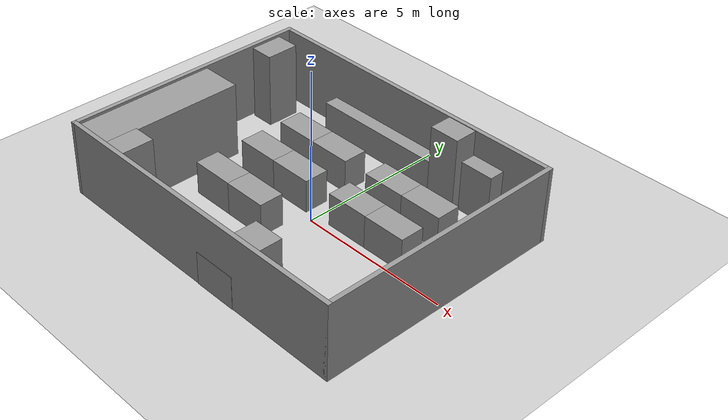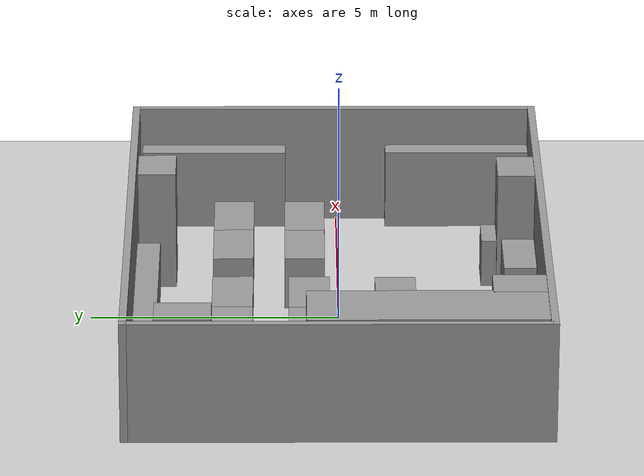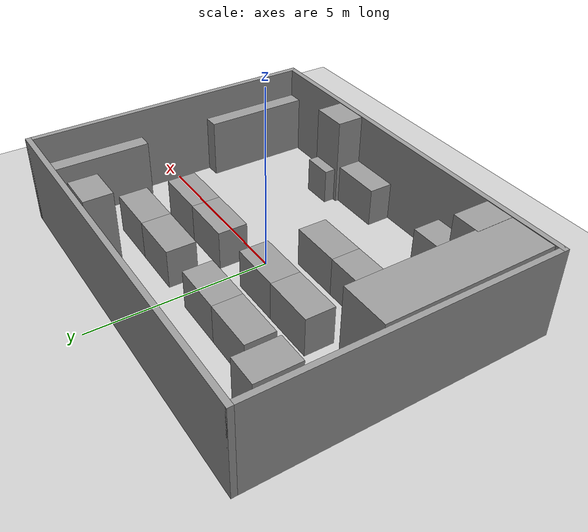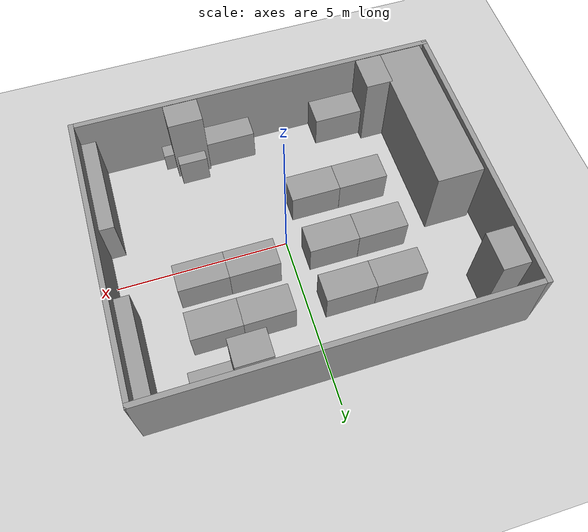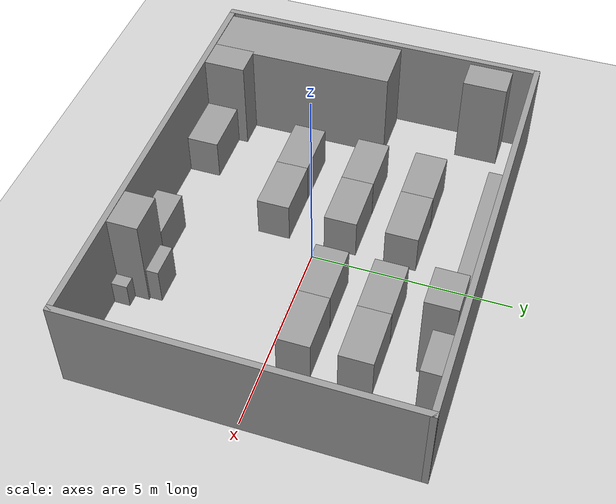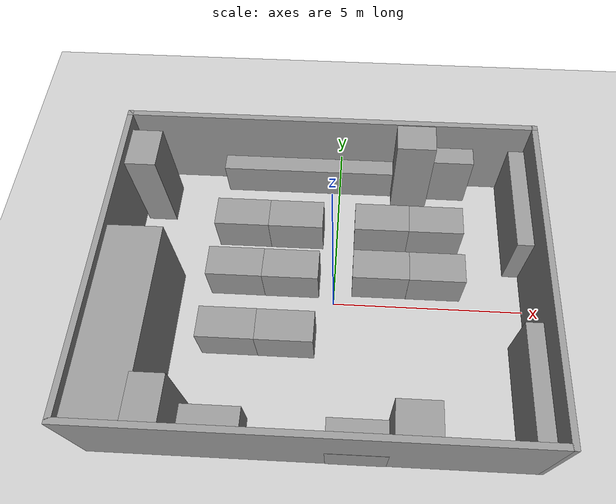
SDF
<sdf version="1.7">
 <world name="skripsi_world">
  <light name="sun" type="directional">
   <pose>0 0 10 0 -0 0</pose>
   <diffuse>0.8 0.8 0.8 1</diffuse>
   <specular>0.2 0.2 0.2 1</specular>
   <attenuation>
    <range>1000</range>
    <constant>0.9</constant>
    <linear>0.01</linear>
    <quadratic>0.001</quadratic>
   </attenuation>
   <direction>-0.5 0.1 -0.9</direction>
   <spot><inner_angle>0</inner_angle><outer_angle>0</outer_angle><falloff>0</falloff></spot>
  </light>
  <model name="ground_plane">
   <static>1</static>
   <link name="link">
    <collision name="collision">
     <geometry><plane><normal>0 0 1</normal><size>100 100</size></plane></geometry>
     <surface>
      <contact><collide_bitmask>65535</collide_bitmask></contact>
      <friction><ode><mu>100</mu><mu2>50</mu2></ode></friction>
     </surface>
    </collision>
    <visual name="visual">
     <cast_shadows>0</cast_shadows>
     <geometry><plane><normal>0 0 1</normal><size>100 100</size></plane></geometry>
     <material>
      <script><uri>file://media/materials/scripts/gazebo.material</uri><name>Gazebo/Grey</name></script>
     </material>
    </visual>
   </link>
  </model>
  <gravity>0 0 -9.8</gravity>
  <magnetic_field>6e-06 2.3e-05 -4.2e-05</magnetic_field>
  <atmosphere type="adiabatic"/>
  <physics type="ode">
   <max_step_size>0.001</max_step_size>
   <real_time_factor>1</real_time_factor>
   <real_time_update_rate>1000</real_time_update_rate>
  </physics>
  <scene><ambient>0.4 0.4 0.4 1</ambient><background>0.7 0.7 0.7 1</background><shadows>1</shadows></scene>
  <spherical_coordinates>
   <surface_model>EARTH_WGS84</surface_model>
   <latitude_deg>0</latitude_deg>
   <longitude_deg>0</longitude_deg>
   <elevation>0</elevation>
   <heading_deg>0</heading_deg>
  </spherical_coordinates>
  <model name="map2d">
   <pose>-0.27298 0.05045 0 0 -0 0</pose>
   <link name="Wall_10">
    <collision name="Wall_10_Collision">
     <geometry><box><size>10.8 0.15 2.5</size></box></geometry>
     <pose>0 0 1.25 0 -0 0</pose>
    </collision>
    <visual name="Wall_10_Visual">
     <pose>0 0 1.25 0 -0 0</pose>
     <geometry><box><size>10.8 0.15 2.5</size></box></geometry>
     <material>
      <script><uri>file://media/materials/scripts/gazebo.material</uri><name>Gazebo/Grey</name></script>
      <ambient>1 1 1 1</ambient>
     </material>
     <meta><layer>0</layer></meta>
    </visual>
    <pose>0 4.125 0 0 -0 0</pose>
   </link>
   <link name="Wall_12">
    <collision name="Wall_12_Collision">
     <geometry><box><size>8.4 0.15 2.5</size></box></geometry>
     <pose>0 0 1.25 0 -0 0</pose>
    </collision>
    <visual name="Wall_12_Visual">
     <pose>0 0 1.25 0 -0 0</pose>
     <geometry><box><size>8.4 0.15 2.5</size></box></geometry>
     <material>
      <script><uri>file://media/materials/scripts/gazebo.material</uri><name>Gazebo/Grey</name></script>
      <ambient>1 1 1 1</ambient>
     </material>
     <meta><layer>0</layer></meta>
    </visual>
    <pose>5.325 0 0 0 -0 1.5708</pose>
   </link>
   <link name="Wall_6">
    <collision name="Wall_6_Collision">
     <geometry><box><size>8.4 0.15 2.5</size></box></geometry>
     <pose>0 0 1.25 0 -0 0</pose>
    </collision>
    <visual name="Wall_6_Visual">
     <pose>0 0 1.25 0 -0 0</pose>
     <geometry><box><size>8.4 0.15 2.5</size></box></geometry>
     <material>
      <script><uri>file://media/materials/scripts/gazebo.material</uri><name>Gazebo/Grey</name></script>
      <ambient>1 1 1 1</ambient>
     </material>
     <meta><layer>0</layer></meta>
    </visual>
    <pose>-5.325 0 0 0 -0 -1.5708</pose>
   </link>
   <link name="Wall_8">
    <collision name="Wall_8_Collision">
     <geometry><box><size>10.8 0.15 2.5</size></box></geometry>
     <pose>0 0 1.25 0 -0 0</pose>
    </collision>
    <visual name="Wall_8_Visual">
     <pose>0 0 1.25 0 -0 0</pose>
     <geometry><box><size>10.8 0.15 2.5</size></box></geometry>
     <material>
      <script><uri>file://media/materials/scripts/gazebo.material</uri><name>Gazebo/Grey</name></script>
      <ambient>1 1 1 1</ambient>
     </material>
     <meta><layer>0</layer></meta>
    </visual>
    <pose>0 -4.125 0 0 -0 0</pose>
   </link>
   <static>1</static>
  </model>
  <model name="unit_box_3_clone_clone_clone">
   <link name="link_clone">
    <inertial>
     <mass>1.2995</mass>
     <inertia>
      <ixx>0.203918</ixx>
      <ixy>0</ixy>
      <ixz>0</ixz>
      <iyy>0.357769</iyy>
      <iyz>0</iyz>
      <izz>0.297836</izz>
     </inertia>
    </inertial>
    <pose>-1.55435 -0.172825 0.042102 0 -0 0</pose>
    <visual name="visual">
     <geometry><box><size>1.44413 0.815352 1.10374</size></box></geometry>
     <material>
      <script><name>Gazebo/Grey</name><uri>file://media/materials/scripts/gazebo.material</uri></script>
      <shader type="pixel"><normal_map>__default__</normal_map></shader>
     </material>
    </visual>
    <collision name="collision">
     <geometry><box><size>1.44413 0.815352 1.10374</size></box></geometry>
     <surface>
      <friction>
       <ode><mu>1</mu><mu2>1</mu2><fdir1>0 0 0</fdir1><slip1>0</slip1><slip2>0</slip2></ode>
       <torsional>
        <coefficient>1</coefficient>
        <patch_radius>0</patch_radius>
        <surface_radius>0</surface_radius>
        <use_patch_radius>1</use_patch_radius>
        <ode><slip>0</slip></ode>
       </torsional>
      </friction>
      <bounce><restitution_coefficient>0</restitution_coefficient><threshold>1e+06</threshold></bounce>
      <contact>
       <collide_without_contact>0</collide_without_contact>
       <collide_without_contact_bitmask>1</collide_without_contact_bitmask>
       <collide_bitmask>1</collide_bitmask>
       <ode>
        <soft_cfm>0</soft_cfm>
        <soft_erp>0.2</soft_erp>
        <kp>1e+13</kp>
        <kd>1</kd>
        <max_vel>0.01</max_vel>
        <min_depth>0</min_depth>
       </ode>
       <bullet>
        <split_impulse>1</split_impulse>
        <split_impulse_penetration_threshold>-0.01</split_impulse_penetration_threshold>
        <soft_cfm>0</soft_cfm>
        <soft_erp>0.2</soft_erp>
        <kp>1e+13</kp>
        <kd>1</kd>
       </bullet>
      </contact>
     </surface>
    </collision>
   </link>
   <static>1</static>
   <pose>-1.10518 -3.42756 0.5 0 -0 0</pose>
  </model>
  <model name="unit_box_0_clone_0_clone">
   <link name="link">
    <inertial>
     <mass>2.16615</mass>
     <inertia><ixx>1.34511</ixx><ixy>0</ixy><ixz>0</ixz><iyy>1.23576</iyy><iyz>0</iyz><izz>0.331862</izz></inertia>
    </inertial>
    <pose>-0.589602 1.20946 0.766518 0 -0 0</pose>
    <visual name="visual">
     <geometry><box><size>0.785064 1.10549 2.4959</size></box></geometry>
     <material>
      <script><name>Gazebo/Grey</name><uri>file://media/materials/scripts/gazebo.material</uri></script>
      <shader type="pixel"/>
     </material>
    </visual>
    <collision name="collision">
     <geometry><box><size>0.785064 1.10549 2.4959</size></box></geometry>
     <surface>
      <friction>
       <ode><mu>1</mu><mu2>1</mu2><fdir1>0 0 0</fdir1><slip1>0</slip1><slip2>0</slip2></ode>
       <torsional>
        <coefficient>1</coefficient>
        <patch_radius>0</patch_radius>
        <surface_radius>0</surface_radius>
        <use_patch_radius>1</use_patch_radius>
        <ode><slip>0</slip></ode>
       </torsional>
      </friction>
      <bounce><restitution_coefficient>0</restitution_coefficient><threshold>1e+06</threshold></bounce>
      <contact>
       <collide_without_contact>0</collide_without_contact>
       <collide_without_contact_bitmask>1</collide_without_contact_bitmask>
       <collide_bitmask>1</collide_bitmask>
       <ode>
        <soft_cfm>0</soft_cfm>
        <soft_erp>0.2</soft_erp>
        <kp>1e+13</kp>
        <kd>1</kd>
        <max_vel>0.01</max_vel>
        <min_depth>0</min_depth>
       </ode>
       <bullet>
        <split_impulse>1</split_impulse>
        <split_impulse_penetration_threshold>-0.01</split_impulse_penetration_threshold>
        <soft_cfm>0</soft_cfm>
        <soft_erp>0.2</soft_erp>
        <kp>1e+13</kp>
        <kd>1</kd>
       </bullet>
      </contact>
     </surface>
    </collision>
   </link>
   <static>1</static>
   <pose>-3.17626 -4.71199 0.471412 0 -0 0</pose>
  </model>
  <model name="unit_box_1_clone">
   <link name="link">
    <inertial>
     <mass>16.4637</mass>
     <inertia><ixx>11.7063</ixx><ixy>0</ixy><ixz>0</ixz><iyy>39.7887</iyy><iyz>0</iyz><izz>33.0581</izz></inertia>
    </inertial>
    <pose>-4.15836 -0.551889 0.778504 0 -0 -1.56625</pose>
    <visual name="visual">
     <geometry><box><size>4.72037 1.34659 2.59212</size></box></geometry>
     <material>
      <script><name>Gazebo/Grey</name><uri>file://media/materials/scripts/gazebo.material</uri></script>
      <shader type="pixel"><normal_map>__default__</normal_map></shader>
     </material>
    </visual>
    <collision name="collision">
     <geometry><box><size>4.72037 1.34659 2.59212</size></box></geometry>
     <surface>
      <friction>
       <ode><mu>1</mu><mu2>1</mu2><fdir1>0 0 0</fdir1><slip1>0</slip1><slip2>0</slip2></ode>
       <torsional>
        <coefficient>1</coefficient>
        <patch_radius>0</patch_radius>
        <surface_radius>0</surface_radius>
        <use_patch_radius>1</use_patch_radius>
        <ode><slip>0</slip></ode>
       </torsional>
      </friction>
      <bounce><restitution_coefficient>0</restitution_coefficient><threshold>1e+06</threshold></bounce>
      <contact>
       <collide_without_contact>0</collide_without_contact>
       <collide_without_contact_bitmask>1</collide_without_contact_bitmask>
       <collide_bitmask>1</collide_bitmask>
       <ode>
        <soft_cfm>0</soft_cfm>
        <soft_erp>0.2</soft_erp>
        <kp>1e+13</kp>
        <kd>1</kd>
        <max_vel>0.01</max_vel>
        <min_depth>0</min_depth>
       </ode>
       <bullet>
        <split_impulse>1</split_impulse>
        <split_impulse_penetration_threshold>-0.01</split_impulse_penetration_threshold>
        <soft_cfm>0</soft_cfm>
        <soft_erp>0.2</soft_erp>
        <kp>1e+13</kp>
        <kd>1</kd>
       </bullet>
      </contact>
     </surface>
    </collision>
   </link>
   <static>1</static>
   <pose>-0.5965 -1.14528 0.407806 0 -0 0</pose>
  </model>
  <model name="unit_box_0_clone_0">
   <link name="link">
    <inertial>
     <mass>2.16615</mass>
     <inertia><ixx>1.34511</ixx><ixy>0</ixy><ixz>0</ixz><iyy>1.23576</iyy><iyz>0</iyz><izz>0.331862</izz></inertia>
    </inertial>
    <pose>-0.589602 1.20946 0.766518 0 -0 0</pose>
    <visual name="visual">
     <geometry><box><size>0.785064 1.10549 2.4959</size></box></geometry>
     <material>
      <script><name>Gazebo/Grey</name><uri>file://media/materials/scripts/gazebo.material</uri></script>
      <shader type="pixel"/>
     </material>
    </visual>
    <collision name="collision">
     <geometry><box><size>0.785064 1.10549 2.4959</size></box></geometry>
     <surface>
      <friction>
       <ode><mu>1</mu><mu2>1</mu2><fdir1>0 0 0</fdir1><slip1>0</slip1><slip2>0</slip2></ode>
       <torsional>
        <coefficient>1</coefficient>
        <patch_radius>0</patch_radius>
        <surface_radius>0</surface_radius>
        <use_patch_radius>1</use_patch_radius>
        <ode><slip>0</slip></ode>
       </torsional>
      </friction>
      <bounce><restitution_coefficient>0</restitution_coefficient><threshold>1e+06</threshold></bounce>
      <contact>
       <collide_without_contact>0</collide_without_contact>
       <collide_without_contact_bitmask>1</collide_without_contact_bitmask>
       <collide_bitmask>1</collide_bitmask>
       <ode>
        <soft_cfm>0</soft_cfm>
        <soft_erp>0.2</soft_erp>
        <kp>1e+13</kp>
        <kd>1</kd>
        <max_vel>0.01</max_vel>
        <min_depth>0</min_depth>
       </ode>
       <bullet>
        <split_impulse>1</split_impulse>
        <split_impulse_penetration_threshold>-0.01</split_impulse_penetration_threshold>
        <soft_cfm>0</soft_cfm>
        <soft_erp>0.2</soft_erp>
        <kp>1e+13</kp>
        <kd>1</kd>
       </bullet>
      </contact>
     </surface>
    </collision>
   </link>
   <static>1</static>
   <pose>-4.44155 1.83377 0.471412 0 -0 0</pose>
  </model>
  <model name="unit_box_1">
   <link name="link">
    <inertial>
     <mass>2.21919</mass>
     <inertia><ixx>0.225874</ixx><ixy>0</ixy><ixz>0</ixz><iyy>4.30557</iyy><iyz>0</iyz><izz>4.16158</izz></inertia>
    </inertial>
    <pose>-1.86412 0.2589 -0 0 -0 0</pose>
    <visual name="visual">
     <geometry><box><size>4.72037 0.47052 1</size></box></geometry>
     <material>
      <script><name>Gazebo/Grey</name><uri>file://media/materials/scripts/gazebo.material</uri></script>
      <shader type="pixel"/>
     </material>
    </visual>
    <collision name="collision">
     <geometry><box><size>4.72037 0.47052 1</size></box></geometry>
     <surface>
      <friction>
       <ode><mu>1</mu><mu2>1</mu2><fdir1>0 0 0</fdir1><slip1>0</slip1><slip2>0</slip2></ode>
       <torsional>
        <coefficient>1</coefficient>
        <patch_radius>0</patch_radius>
        <surface_radius>0</surface_radius>
        <use_patch_radius>1</use_patch_radius>
        <ode><slip>0</slip></ode>
       </torsional>
      </friction>
      <bounce><restitution_coefficient>0</restitution_coefficient><threshold>1e+06</threshold></bounce>
      <contact>
       <collide_without_contact>0</collide_without_contact>
       <collide_without_contact_bitmask>1</collide_without_contact_bitmask>
       <collide_bitmask>1</collide_bitmask>
       <ode>
        <soft_cfm>0</soft_cfm>
        <soft_erp>0.2</soft_erp>
        <kp>1e+13</kp>
        <kd>1</kd>
        <max_vel>0.01</max_vel>
        <min_depth>0</min_depth>
       </ode>
       <bullet>
        <split_impulse>1</split_impulse>
        <split_impulse_penetration_threshold>-0.01</split_impulse_penetration_threshold>
        <soft_cfm>0</soft_cfm>
        <soft_erp>0.2</soft_erp>
        <kp>1e+13</kp>
        <kd>1</kd>
       </bullet>
      </contact>
     </surface>
    </collision>
   </link>
   <static>1</static>
   <pose>0.978452 3.59508 0.5 0 -0 0</pose>
  </model>
  <model name="unit_box_0">
   <link name="link">
    <inertial>
     <mass>1.91772</mass>
     <inertia><ixx>1.08989</ixx><ixy>0</ixy><ixz>0</ixz><iyy>1.15535</iyy><iyz>0</iyz><izz>0.254156</izz></inertia>
    </inertial>
    <pose>0.014241 0.318741 0.766518 0 -0 0</pose>
    <visual name="visual">
     <geometry><box><size>1 0.768349 2.4959</size></box></geometry>
     <material>
      <script><name>Gazebo/Grey</name><uri>file://media/materials/scripts/gazebo.material</uri></script>
      <shader type="pixel"/>
     </material>
    </visual>
    <collision name="collision">
     <geometry><box><size>1 0.768349 2.4959</size></box></geometry>
     <surface>
      <friction>
       <ode><mu>1</mu><mu2>1</mu2><fdir1>0 0 0</fdir1><slip1>0</slip1><slip2>0</slip2></ode>
       <torsional>
        <coefficient>1</coefficient>
        <patch_radius>0</patch_radius>
        <surface_radius>0</surface_radius>
        <use_patch_radius>1</use_patch_radius>
        <ode><slip>0</slip></ode>
       </torsional>
      </friction>
      <bounce><restitution_coefficient>0</restitution_coefficient><threshold>1e+06</threshold></bounce>
      <contact>
       <collide_without_contact>0</collide_without_contact>
       <collide_without_contact_bitmask>1</collide_without_contact_bitmask>
       <collide_bitmask>1</collide_bitmask>
       <ode>
        <soft_cfm>0</soft_cfm>
        <soft_erp>0.2</soft_erp>
        <kp>1e+13</kp>
        <kd>1</kd>
        <max_vel>0.01</max_vel>
        <min_depth>0</min_depth>
       </ode>
       <bullet>
        <split_impulse>1</split_impulse>
        <split_impulse_penetration_threshold>-0.01</split_impulse_penetration_threshold>
        <soft_cfm>0</soft_cfm>
        <soft_erp>0.2</soft_erp>
        <kp>1e+13</kp>
        <kd>1</kd>
       </bullet>
      </contact>
     </surface>
    </collision>
   </link>
   <static>1</static>
   <pose>1.96795 3.35996 0.500002 0 -0 0</pose>
  </model>
  <model name="unit_box_clone_0">
   <link name="link">
    <inertial>
     <mass>0.961011</mass>
     <inertia>
      <ixx>0.322083</ixx>
      <ixy>0</ixy>
      <ixz>0</ixz>
      <iyy>0.245826</iyy>
      <iyz>0</iyz>
      <izz>0.119491</izz>
     </inertia>
    </inertial>
    <pose>0.62882 0.832726 0.348182 0 -0 1.56649</pose>
    <visual name="visual">
     <geometry><box><size>0.519542 1.1055 1.67322</size></box></geometry>
     <material>
      <script><name>Gazebo/Grey</name><uri>file://media/materials/scripts/gazebo.material</uri></script>
      <shader type="pixel"/>
     </material>
    </visual>
    <collision name="collision">
     <geometry><box><size>0.519542 1.1055 1.67322</size></box></geometry>
     <surface>
      <friction>
       <ode><mu>1</mu><mu2>1</mu2><fdir1>0 0 0</fdir1><slip1>0</slip1><slip2>0</slip2></ode>
       <torsional>
        <coefficient>1</coefficient>
        <patch_radius>0</patch_radius>
        <surface_radius>0</surface_radius>
        <use_patch_radius>1</use_patch_radius>
        <ode><slip>0</slip></ode>
       </torsional>
      </friction>
      <bounce><restitution_coefficient>0</restitution_coefficient><threshold>1e+06</threshold></bounce>
      <contact>
       <collide_without_contact>0</collide_without_contact>
       <collide_without_contact_bitmask>1</collide_without_contact_bitmask>
       <collide_bitmask>1</collide_bitmask>
       <ode>
        <soft_cfm>0</soft_cfm>
        <soft_erp>0.2</soft_erp>
        <kp>1e+13</kp>
        <kd>1</kd>
        <max_vel>0.01</max_vel>
        <min_depth>0</min_depth>
       </ode>
       <bullet>
        <split_impulse>1</split_impulse>
        <split_impulse_penetration_threshold>-0.01</split_impulse_penetration_threshold>
        <soft_cfm>0</soft_cfm>
        <soft_erp>0.2</soft_erp>
        <kp>1e+13</kp>
        <kd>1</kd>
       </bullet>
      </contact>
     </surface>
    </collision>
   </link>
   <static>1</static>
   <pose>2.41817 2.98239 0.5 0 -0 0</pose>
  </model>
  <model name="unit_box">
   <link name="link">
    <inertial>
     <mass>2.58648</mass>
     <inertia><ixx>2.51159</ixx><ixy>0</ixy><ixz>0</ixz><iyy>0.661618</iyy><iyz>0</iyz><izz>1.96633</izz></inertia>
    </inertial>
    <pose>0.268638 -1.01766 0.348182 0 -0 0</pose>
    <visual name="visual">
     <geometry><box><size>0.519542 2.97538 1.67322</size></box></geometry>
     <material>
      <script><name>Gazebo/Grey</name><uri>file://media/materials/scripts/gazebo.material</uri></script>
      <shader type="pixel"/>
     </material>
    </visual>
    <collision name="collision">
     <geometry><box><size>0.519542 2.97538 1.67322</size></box></geometry>
     <surface>
      <friction>
       <ode><mu>1</mu><mu2>1</mu2><fdir1>0 0 0</fdir1><slip1>0</slip1><slip2>0</slip2></ode>
       <torsional>
        <coefficient>1</coefficient>
        <patch_radius>0</patch_radius>
        <surface_radius>0</surface_radius>
        <use_patch_radius>1</use_patch_radius>
        <ode><slip>0</slip></ode>
       </torsional>
      </friction>
      <bounce><restitution_coefficient>0</restitution_coefficient><threshold>1e+06</threshold></bounce>
      <contact>
       <collide_without_contact>0</collide_without_contact>
       <collide_without_contact_bitmask>1</collide_without_contact_bitmask>
       <collide_bitmask>1</collide_bitmask>
       <ode>
        <soft_cfm>0</soft_cfm>
        <soft_erp>0.2</soft_erp>
        <kp>1e+13</kp>
        <kd>1</kd>
        <max_vel>0.01</max_vel>
        <min_depth>0</min_depth>
       </ode>
       <bullet>
        <split_impulse>1</split_impulse>
        <split_impulse_penetration_threshold>-0.01</split_impulse_penetration_threshold>
        <soft_cfm>0</soft_cfm>
        <soft_erp>0.2</soft_erp>
        <kp>1e+13</kp>
        <kd>1</kd>
       </bullet>
      </contact>
     </surface>
    </collision>
   </link>
   <static>1</static>
   <pose>4.54401 3.57819 0.5 0 -0 0</pose>
  </model>
  <model name="unit_box_3_clone_0">
   <link name="link">
    <inertial>
     <mass>1.2995</mass>
     <inertia>
      <ixx>0.203918</ixx>
      <ixy>0</ixy>
      <ixz>0</ixz>
      <iyy>0.357769</iyy>
      <iyz>0</iyz>
      <izz>0.297836</izz>
     </inertia>
    </inertial>
    <pose>-0.116321 0.238575 0.042102 0 -0 0</pose>
    <visual name="visual">
     <geometry><box><size>1.44413 0.815352 1.10374</size></box></geometry>
     <material>
      <script><name>Gazebo/Grey</name><uri>file://media/materials/scripts/gazebo.material</uri></script>
      <shader type="pixel"><normal_map>__default__</normal_map></shader>
     </material>
    </visual>
    <collision name="collision">
     <geometry><box><size>1.44413 0.815352 1.10374</size></box></geometry>
     <surface>
      <friction>
       <ode><mu>1</mu><mu2>1</mu2><fdir1>0 0 0</fdir1><slip1>0</slip1><slip2>0</slip2></ode>
       <torsional>
        <coefficient>1</coefficient>
        <patch_radius>0</patch_radius>
        <surface_radius>0</surface_radius>
        <use_patch_radius>1</use_patch_radius>
        <ode><slip>0</slip></ode>
       </torsional>
      </friction>
      <bounce><restitution_coefficient>0</restitution_coefficient><threshold>1e+06</threshold></bounce>
      <contact>
       <collide_without_contact>0</collide_without_contact>
       <collide_without_contact_bitmask>1</collide_without_contact_bitmask>
       <collide_bitmask>1</collide_bitmask>
       <ode>
        <soft_cfm>0</soft_cfm>
        <soft_erp>0.2</soft_erp>
        <kp>1e+13</kp>
        <kd>1</kd>
        <max_vel>0.01</max_vel>
        <min_depth>0</min_depth>
       </ode>
       <bullet>
        <split_impulse>1</split_impulse>
        <split_impulse_penetration_threshold>-0.01</split_impulse_penetration_threshold>
        <soft_cfm>0</soft_cfm>
        <soft_erp>0.2</soft_erp>
        <kp>1e+13</kp>
        <kd>1</kd>
       </bullet>
      </contact>
     </surface>
    </collision>
   </link>
   <link name="link_clone">
    <inertial>
     <mass>1.2995</mass>
     <inertia>
      <ixx>0.203918</ixx>
      <ixy>0</ixy>
      <ixz>0</ixz>
      <iyy>0.357769</iyy>
      <iyz>0</iyz>
      <izz>0.297836</izz>
     </inertia>
    </inertial>
    <pose>-1.55435 0.24095 0.042102 0 -0 0</pose>
    <visual name="visual">
     <geometry><box><size>1.44413 0.815352 1.10374</size></box></geometry>
     <material>
      <script><name>Gazebo/Grey</name><uri>file://media/materials/scripts/gazebo.material</uri></script>
      <shader type="pixel"><normal_map>__default__</normal_map></shader>
     </material>
    </visual>
    <collision name="collision">
     <geometry><box><size>1.44413 0.815352 1.10374</size></box></geometry>
     <surface>
      <friction>
       <ode><mu>1</mu><mu2>1</mu2><fdir1>0 0 0</fdir1><slip1>0</slip1><slip2>0</slip2></ode>
       <torsional>
        <coefficient>1</coefficient>
        <patch_radius>0</patch_radius>
        <surface_radius>0</surface_radius>
        <use_patch_radius>1</use_patch_radius>
        <ode><slip>0</slip></ode>
       </torsional>
      </friction>
      <bounce><restitution_coefficient>0</restitution_coefficient><threshold>1e+06</threshold></bounce>
      <contact>
       <collide_without_contact>0</collide_without_contact>
       <collide_without_contact_bitmask>1</collide_without_contact_bitmask>
       <collide_bitmask>1</collide_bitmask>
       <ode>
        <soft_cfm>0</soft_cfm>
        <soft_erp>0.2</soft_erp>
        <kp>1e+13</kp>
        <kd>1</kd>
        <max_vel>0.01</max_vel>
        <min_depth>0</min_depth>
       </ode>
       <bullet>
        <split_impulse>1</split_impulse>
        <split_impulse_penetration_threshold>-0.01</split_impulse_penetration_threshold>
        <soft_cfm>0</soft_cfm>
        <soft_erp>0.2</soft_erp>
        <kp>1e+13</kp>
        <kd>1</kd>
       </bullet>
      </contact>
     </surface>
    </collision>
   </link>
   <static>1</static>
   <pose>2.75129 0.435724 0.5 0 -0 0</pose>
  </model>
  <model name="unit_box_3">
   <link name="link">
    <inertial>
     <mass>1.2995</mass>
     <inertia>
      <ixx>0.203918</ixx>
      <ixy>0</ixy>
      <ixz>0</ixz>
      <iyy>0.357769</iyy>
      <iyz>0</iyz>
      <izz>0.297836</izz>
     </inertia>
    </inertial>
    <pose>-0.116321 0.238575 0.042102 0 -0 0</pose>
    <visual name="visual">
     <geometry><box><size>1.44413 0.815352 1.10374</size></box></geometry>
     <material>
      <script><name>Gazebo/Grey</name><uri>file://media/materials/scripts/gazebo.material</uri></script>
      <shader type="pixel"><normal_map>__default__</normal_map></shader>
     </material>
    </visual>
    <collision name="collision">
     <geometry><box><size>1.44413 0.815352 1.10374</size></box></geometry>
     <surface>
      <friction>
       <ode><mu>1</mu><mu2>1</mu2><fdir1>0 0 0</fdir1><slip1>0</slip1><slip2>0</slip2></ode>
       <torsional>
        <coefficient>1</coefficient>
        <patch_radius>0</patch_radius>
        <surface_radius>0</surface_radius>
        <use_patch_radius>1</use_patch_radius>
        <ode><slip>0</slip></ode>
       </torsional>
      </friction>
      <bounce><restitution_coefficient>0</restitution_coefficient><threshold>1e+06</threshold></bounce>
      <contact>
       <collide_without_contact>0</collide_without_contact>
       <collide_without_contact_bitmask>1</collide_without_contact_bitmask>
       <collide_bitmask>1</collide_bitmask>
       <ode>
        <soft_cfm>0</soft_cfm>
        <soft_erp>0.2</soft_erp>
        <kp>1e+13</kp>
        <kd>1</kd>
        <max_vel>0.01</max_vel>
        <min_depth>0</min_depth>
       </ode>
       <bullet>
        <split_impulse>1</split_impulse>
        <split_impulse_penetration_threshold>-0.01</split_impulse_penetration_threshold>
        <soft_cfm>0</soft_cfm>
        <soft_erp>0.2</soft_erp>
        <kp>1e+13</kp>
        <kd>1</kd>
       </bullet>
      </contact>
     </surface>
    </collision>
   </link>
   <link name="link_clone">
    <inertial>
     <mass>1.2995</mass>
     <inertia>
      <ixx>0.203918</ixx>
      <ixy>0</ixy>
      <ixz>0</ixz>
      <iyy>0.357769</iyy>
      <iyz>0</iyz>
      <izz>0.297836</izz>
     </inertia>
    </inertial>
    <pose>-1.55435 0.24095 0.042102 0 -0 0</pose>
    <visual name="visual">
     <geometry><box><size>1.44413 0.815352 1.10374</size></box></geometry>
     <material>
      <script><name>Gazebo/Grey</name><uri>file://media/materials/scripts/gazebo.material</uri></script>
      <shader type="pixel"><normal_map>__default__</normal_map></shader>
     </material>
    </visual>
    <collision name="collision">
     <geometry><box><size>1.44413 0.815352 1.10374</size></box></geometry>
     <surface>
      <friction>
       <ode><mu>1</mu><mu2>1</mu2><fdir1>0 0 0</fdir1><slip1>0</slip1><slip2>0</slip2></ode>
       <torsional>
        <coefficient>1</coefficient>
        <patch_radius>0</patch_radius>
        <surface_radius>0</surface_radius>
        <use_patch_radius>1</use_patch_radius>
        <ode><slip>0</slip></ode>
       </torsional>
      </friction>
      <bounce><restitution_coefficient>0</restitution_coefficient><threshold>1e+06</threshold></bounce>
      <contact>
       <collide_without_contact>0</collide_without_contact>
       <collide_without_contact_bitmask>1</collide_without_contact_bitmask>
       <collide_bitmask>1</collide_bitmask>
       <ode>
        <soft_cfm>0</soft_cfm>
        <soft_erp>0.2</soft_erp>
        <kp>1e+13</kp>
        <kd>1</kd>
        <max_vel>0.01</max_vel>
        <min_depth>0</min_depth>
       </ode>
       <bullet>
        <split_impulse>1</split_impulse>
        <split_impulse_penetration_threshold>-0.01</split_impulse_penetration_threshold>
        <soft_cfm>0</soft_cfm>
        <soft_erp>0.2</soft_erp>
        <kp>1e+13</kp>
        <kd>1</kd>
       </bullet>
      </contact>
     </surface>
    </collision>
   </link>
   <static>1</static>
   <pose>2.75266 1.88173 0.5 0 -0 0</pose>
  </model>
  <model name="unit_box_3_clone">
   <link name="link">
    <inertial>
     <mass>1.2995</mass>
     <inertia>
      <ixx>0.203918</ixx>
      <ixy>0</ixy>
      <ixz>0</ixz>
      <iyy>0.357769</iyy>
      <iyz>0</iyz>
      <izz>0.297836</izz>
     </inertia>
    </inertial>
    <pose>-0.116321 0.238575 0.042102 0 -0 0</pose>
    <visual name="visual">
     <geometry><box><size>1.44413 0.815352 1.10374</size></box></geometry>
     <material>
      <script><name>Gazebo/Grey</name><uri>file://media/materials/scripts/gazebo.material</uri></script>
      <shader type="pixel"><normal_map>__default__</normal_map></shader>
     </material>
    </visual>
    <collision name="collision">
     <geometry><box><size>1.44413 0.815352 1.10374</size></box></geometry>
     <surface>
      <friction>
       <ode><mu>1</mu><mu2>1</mu2><fdir1>0 0 0</fdir1><slip1>0</slip1><slip2>0</slip2></ode>
       <torsional>
        <coefficient>1</coefficient>
        <patch_radius>0</patch_radius>
        <surface_radius>0</surface_radius>
        <use_patch_radius>1</use_patch_radius>
        <ode><slip>0</slip></ode>
       </torsional>
      </friction>
      <bounce><restitution_coefficient>0</restitution_coefficient><threshold>1e+06</threshold></bounce>
      <contact>
       <collide_without_contact>0</collide_without_contact>
       <collide_without_contact_bitmask>1</collide_without_contact_bitmask>
       <collide_bitmask>1</collide_bitmask>
       <ode>
        <soft_cfm>0</soft_cfm>
        <soft_erp>0.2</soft_erp>
        <kp>1e+13</kp>
        <kd>1</kd>
        <max_vel>0.01</max_vel>
        <min_depth>0</min_depth>
       </ode>
       <bullet>
        <split_impulse>1</split_impulse>
        <split_impulse_penetration_threshold>-0.01</split_impulse_penetration_threshold>
        <soft_cfm>0</soft_cfm>
        <soft_erp>0.2</soft_erp>
        <kp>1e+13</kp>
        <kd>1</kd>
       </bullet>
      </contact>
     </surface>
    </collision>
   </link>
   <link name="link_clone">
    <inertial>
     <mass>1.2995</mass>
     <inertia>
      <ixx>0.203918</ixx>
      <ixy>0</ixy>
      <ixz>0</ixz>
      <iyy>0.357769</iyy>
      <iyz>0</iyz>
      <izz>0.297836</izz>
     </inertia>
    </inertial>
    <pose>-1.55435 0.24095 0.042102 0 -0 0</pose>
    <visual name="visual">
     <geometry><box><size>1.44413 0.815352 1.10374</size></box></geometry>
     <material>
      <script><name>Gazebo/Grey</name><uri>file://media/materials/scripts/gazebo.material</uri></script>
      <shader type="pixel"><normal_map>__default__</normal_map></shader>
     </material>
    </visual>
    <collision name="collision">
     <geometry><box><size>1.44413 0.815352 1.10374</size></box></geometry>
     <surface>
      <friction>
       <ode><mu>1</mu><mu2>1</mu2><fdir1>0 0 0</fdir1><slip1>0</slip1><slip2>0</slip2></ode>
       <torsional>
        <coefficient>1</coefficient>
        <patch_radius>0</patch_radius>
        <surface_radius>0</surface_radius>
        <use_patch_radius>1</use_patch_radius>
        <ode><slip>0</slip></ode>
       </torsional>
      </friction>
      <bounce><restitution_coefficient>0</restitution_coefficient><threshold>1e+06</threshold></bounce>
      <contact>
       <collide_without_contact>0</collide_without_contact>
       <collide_without_contact_bitmask>1</collide_without_contact_bitmask>
       <collide_bitmask>1</collide_bitmask>
       <ode>
        <soft_cfm>0</soft_cfm>
        <soft_erp>0.2</soft_erp>
        <kp>1e+13</kp>
        <kd>1</kd>
        <max_vel>0.01</max_vel>
        <min_depth>0</min_depth>
       </ode>
       <bullet>
        <split_impulse>1</split_impulse>
        <split_impulse_penetration_threshold>-0.01</split_impulse_penetration_threshold>
        <soft_cfm>0</soft_cfm>
        <soft_erp>0.2</soft_erp>
        <kp>1e+13</kp>
        <kd>1</kd>
       </bullet>
      </contact>
     </surface>
    </collision>
   </link>
   <static>1</static>
   <pose>-0.984439 1.88477 0.5 0 -0 0</pose>
  </model>
  <model name="unit_box_3_clone_clone">
   <link name="link">
    <inertial>
     <mass>1.2995</mass>
     <inertia>
      <ixx>0.203918</ixx>
      <ixy>0</ixy>
      <ixz>0</ixz>
      <iyy>0.357769</iyy>
      <iyz>0</iyz>
      <izz>0.297836</izz>
     </inertia>
    </inertial>
    <pose>-0.116321 0.238575 0.042102 0 -0 0</pose>
    <visual name="visual">
     <geometry><box><size>1.44413 0.815352 1.10374</size></box></geometry>
     <material>
      <script><name>Gazebo/Grey</name><uri>file://media/materials/scripts/gazebo.material</uri></script>
      <shader type="pixel"><normal_map>__default__</normal_map></shader>
     </material>
    </visual>
    <collision name="collision">
     <geometry><box><size>1.44413 0.815352 1.10374</size></box></geometry>
     <surface>
      <friction>
       <ode><mu>1</mu><mu2>1</mu2><fdir1>0 0 0</fdir1><slip1>0</slip1><slip2>0</slip2></ode>
       <torsional>
        <coefficient>1</coefficient>
        <patch_radius>0</patch_radius>
        <surface_radius>0</surface_radius>
        <use_patch_radius>1</use_patch_radius>
        <ode><slip>0</slip></ode>
       </torsional>
      </friction>
      <bounce><restitution_coefficient>0</restitution_coefficient><threshold>1e+06</threshold></bounce>
      <contact>
       <collide_without_contact>0</collide_without_contact>
       <collide_without_contact_bitmask>1</collide_without_contact_bitmask>
       <collide_bitmask>1</collide_bitmask>
       <ode>
        <soft_cfm>0</soft_cfm>
        <soft_erp>0.2</soft_erp>
        <kp>1e+13</kp>
        <kd>1</kd>
        <max_vel>0.01</max_vel>
        <min_depth>0</min_depth>
       </ode>
       <bullet>
        <split_impulse>1</split_impulse>
        <split_impulse_penetration_threshold>-0.01</split_impulse_penetration_threshold>
        <soft_cfm>0</soft_cfm>
        <soft_erp>0.2</soft_erp>
        <kp>1e+13</kp>
        <kd>1</kd>
       </bullet>
      </contact>
     </surface>
    </collision>
   </link>
   <link name="link_clone">
    <inertial>
     <mass>1.2995</mass>
     <inertia>
      <ixx>0.203918</ixx>
      <ixy>0</ixy>
      <ixz>0</ixz>
      <iyy>0.357769</iyy>
      <iyz>0</iyz>
      <izz>0.297836</izz>
     </inertia>
    </inertial>
    <pose>-1.55435 0.24095 0.042102 0 -0 0</pose>
    <visual name="visual">
     <geometry><box><size>1.44413 0.815352 1.10374</size></box></geometry>
     <material>
      <script><name>Gazebo/Grey</name><uri>file://media/materials/scripts/gazebo.material</uri></script>
      <shader type="pixel"><normal_map>__default__</normal_map></shader>
     </material>
    </visual>
    <collision name="collision">
     <geometry><box><size>1.44413 0.815352 1.10374</size></box></geometry>
     <surface>
      <friction>
       <ode><mu>1</mu><mu2>1</mu2><fdir1>0 0 0</fdir1><slip1>0</slip1><slip2>0</slip2></ode>
       <torsional>
        <coefficient>1</coefficient>
        <patch_radius>0</patch_radius>
        <surface_radius>0</surface_radius>
        <use_patch_radius>1</use_patch_radius>
        <ode><slip>0</slip></ode>
       </torsional>
      </friction>
      <bounce><restitution_coefficient>0</restitution_coefficient><threshold>1e+06</threshold></bounce>
      <contact>
       <collide_without_contact>0</collide_without_contact>
       <collide_without_contact_bitmask>1</collide_without_contact_bitmask>
       <collide_bitmask>1</collide_bitmask>
       <ode>
        <soft_cfm>0</soft_cfm>
        <soft_erp>0.2</soft_erp>
        <kp>1e+13</kp>
        <kd>1</kd>
        <max_vel>0.01</max_vel>
        <min_depth>0</min_depth>
       </ode>
       <bullet>
        <split_impulse>1</split_impulse>
        <split_impulse_penetration_threshold>-0.01</split_impulse_penetration_threshold>
        <soft_cfm>0</soft_cfm>
        <soft_erp>0.2</soft_erp>
        <kp>1e+13</kp>
        <kd>1</kd>
       </bullet>
      </contact>
     </surface>
    </collision>
   </link>
   <static>1</static>
   <pose>-1.00879 0.353552 0.5 0 -0 0</pose>
  </model>
  <model name="unit_box_3_clone_clone_clone_0">
   <link name="link">
    <inertial>
     <mass>1.2995</mass>
     <inertia>
      <ixx>0.203918</ixx>
      <ixy>0</ixy>
      <ixz>0</ixz>
      <iyy>0.357769</iyy>
      <iyz>0</iyz>
      <izz>0.297836</izz>
     </inertia>
    </inertial>
    <pose>-0.116321 0.238575 0.042102 0 -0 0</pose>
    <visual name="visual">
     <geometry><box><size>1.44413 0.815352 1.10374</size></box></geometry>
     <material>
      <script><name>Gazebo/Grey</name><uri>file://media/materials/scripts/gazebo.material</uri></script>
      <shader type="pixel"><normal_map>__default__</normal_map></shader>
     </material>
    </visual>
    <collision name="collision">
     <geometry><box><size>1.44413 0.815352 1.10374</size></box></geometry>
     <surface>
      <friction>
       <ode><mu>1</mu><mu2>1</mu2><fdir1>0 0 0</fdir1><slip1>0</slip1><slip2>0</slip2></ode>
       <torsional>
        <coefficient>1</coefficient>
        <patch_radius>0</patch_radius>
        <surface_radius>0</surface_radius>
        <use_patch_radius>1</use_patch_radius>
        <ode><slip>0</slip></ode>
       </torsional>
      </friction>
      <bounce><restitution_coefficient>0</restitution_coefficient><threshold>1e+06</threshold></bounce>
      <contact>
       <collide_without_contact>0</collide_without_contact>
       <collide_without_contact_bitmask>1</collide_without_contact_bitmask>
       <collide_bitmask>1</collide_bitmask>
       <ode>
        <soft_cfm>0</soft_cfm>
        <soft_erp>0.2</soft_erp>
        <kp>1e+13</kp>
        <kd>1</kd>
        <max_vel>0.01</max_vel>
        <min_depth>0</min_depth>
       </ode>
       <bullet>
        <split_impulse>1</split_impulse>
        <split_impulse_penetration_threshold>-0.01</split_impulse_penetration_threshold>
        <soft_cfm>0</soft_cfm>
        <soft_erp>0.2</soft_erp>
        <kp>1e+13</kp>
        <kd>1</kd>
       </bullet>
      </contact>
     </surface>
    </collision>
   </link>
   <link name="link_clone">
    <inertial>
     <mass>1.2995</mass>
     <inertia>
      <ixx>0.203918</ixx>
      <ixy>0</ixy>
      <ixz>0</ixz>
      <iyy>0.357769</iyy>
      <iyz>0</iyz>
      <izz>0.297836</izz>
     </inertia>
    </inertial>
    <pose>-1.55435 0.24095 0.042102 0 -0 0</pose>
    <visual name="visual">
     <geometry><box><size>1.44413 0.815352 1.10374</size></box></geometry>
     <material>
      <script><name>Gazebo/Grey</name><uri>file://media/materials/scripts/gazebo.material</uri></script>
      <shader type="pixel"><normal_map>__default__</normal_map></shader>
     </material>
    </visual>
    <collision name="collision">
     <geometry><box><size>1.44413 0.815352 1.10374</size></box></geometry>
     <surface>
      <friction>
       <ode><mu>1</mu><mu2>1</mu2><fdir1>0 0 0</fdir1><slip1>0</slip1><slip2>0</slip2></ode>
       <torsional>
        <coefficient>1</coefficient>
        <patch_radius>0</patch_radius>
        <surface_radius>0</surface_radius>
        <use_patch_radius>1</use_patch_radius>
        <ode><slip>0</slip></ode>
       </torsional>
      </friction>
      <bounce><restitution_coefficient>0</restitution_coefficient><threshold>1e+06</threshold></bounce>
      <contact>
       <collide_without_contact>0</collide_without_contact>
       <collide_without_contact_bitmask>1</collide_without_contact_bitmask>
       <collide_bitmask>1</collide_bitmask>
       <ode>
        <soft_cfm>0</soft_cfm>
        <soft_erp>0.2</soft_erp>
        <kp>1e+13</kp>
        <kd>1</kd>
        <max_vel>0.01</max_vel>
        <min_depth>0</min_depth>
       </ode>
       <bullet>
        <split_impulse>1</split_impulse>
        <split_impulse_penetration_threshold>-0.01</split_impulse_penetration_threshold>
        <soft_cfm>0</soft_cfm>
        <soft_erp>0.2</soft_erp>
        <kp>1e+13</kp>
        <kd>1</kd>
       </bullet>
      </contact>
     </surface>
    </collision>
   </link>
   <static>1</static>
   <pose>-1.01898 -1.36939 0.5 0 -0 0</pose>
  </model>
  <model name="unit_box_clone">
   <link name="link">
    <inertial>
     <mass>2.58648</mass>
     <inertia><ixx>2.51159</ixx><ixy>0</ixy><ixz>0</ixz><iyy>0.661618</iyy><iyz>0</iyz><izz>1.96633</izz></inertia>
    </inertial>
    <pose>0.26322 -1.02126 0.348182 0 -0 0</pose>
    <visual name="visual">
     <geometry><box><size>0.519542 2.97538 1.67322</size></box></geometry>
     <material>
      <script><name>Gazebo/Grey</name><uri>file://media/materials/scripts/gazebo.material</uri></script>
      <shader type="pixel"/>
     </material>
    </visual>
    <collision name="collision">
     <geometry><box><size>0.519542 2.97538 1.67322</size></box></geometry>
     <surface>
      <friction>
       <ode><mu>1</mu><mu2>1</mu2><fdir1>0 0 0</fdir1><slip1>0</slip1><slip2>0</slip2></ode>
       <torsional>
        <coefficient>1</coefficient>
        <patch_radius>0</patch_radius>
        <surface_radius>0</surface_radius>
        <use_patch_radius>1</use_patch_radius>
        <ode><slip>0</slip></ode>
       </torsional>
      </friction>
      <bounce><restitution_coefficient>0</restitution_coefficient><threshold>1e+06</threshold></bounce>
      <contact>
       <collide_without_contact>0</collide_without_contact>
       <collide_without_contact_bitmask>1</collide_without_contact_bitmask>
       <collide_bitmask>1</collide_bitmask>
       <ode>
        <soft_cfm>0</soft_cfm>
        <soft_erp>0.2</soft_erp>
        <kp>1e+13</kp>
        <kd>1</kd>
        <max_vel>0.01</max_vel>
        <min_depth>0</min_depth>
       </ode>
       <bullet>
        <split_impulse>1</split_impulse>
        <split_impulse_penetration_threshold>-0.01</split_impulse_penetration_threshold>
        <soft_cfm>0</soft_cfm>
        <soft_erp>0.2</soft_erp>
        <kp>1e+13</kp>
        <kd>1</kd>
       </bullet>
      </contact>
     </surface>
    </collision>
   </link>
   <static>1</static>
   <pose>4.55084 -1.49115 0.5 0 -0 0</pose>
  </model>
  <model name="unit_box_4">
   <link name="link">
    <inertial>
     <mass>0.336239</mass>
     <inertia>
      <ixx>0.0326099</ixx>
      <ixy>0</ixy>
      <ixz>0</ixz>
      <iyy>0.0473576</iyy>
      <iyz>0</iyz>
      <izz>0.0239277</izz>
     </inertia>
    </inertial>
    <pose>0.015411 -0.133552 0 0 -0 0</pose>
    <visual name="visual">
     <geometry><box><size>0.830747 0.404738 1</size></box></geometry>
     <material>
      <script><name>Gazebo/Grey</name><uri>file://media/materials/scripts/gazebo.material</uri></script>
      <shader type="pixel"/>
     </material>
    </visual>
    <collision name="collision">
     <geometry><box><size>0.830747 0.404738 1</size></box></geometry>
     <surface>
      <friction>
       <ode><mu>1</mu><mu2>1</mu2><fdir1>0 0 0</fdir1><slip1>0</slip1><slip2>0</slip2></ode>
       <torsional>
        <coefficient>1</coefficient>
        <patch_radius>0</patch_radius>
        <surface_radius>0</surface_radius>
        <use_patch_radius>1</use_patch_radius>
        <ode><slip>0</slip></ode>
       </torsional>
      </friction>
      <bounce><restitution_coefficient>0</restitution_coefficient><threshold>1e+06</threshold></bounce>
      <contact>
       <collide_without_contact>0</collide_without_contact>
       <collide_without_contact_bitmask>1</collide_without_contact_bitmask>
       <collide_bitmask>1</collide_bitmask>
       <ode>
        <soft_cfm>0</soft_cfm>
        <soft_erp>0.2</soft_erp>
        <kp>1e+13</kp>
        <kd>1</kd>
        <max_vel>0.01</max_vel>
        <min_depth>0</min_depth>
       </ode>
       <bullet>
        <split_impulse>1</split_impulse>
        <split_impulse_penetration_threshold>-0.01</split_impulse_penetration_threshold>
        <soft_cfm>0</soft_cfm>
        <soft_erp>0.2</soft_erp>
        <kp>1e+13</kp>
        <kd>1</kd>
       </bullet>
      </contact>
     </surface>
    </collision>
   </link>
   <static>1</static>
   <pose>1.96547 -3.00881 0.5 0 -0 0</pose>
  </model>
  <model name="unit_box_5">
   <link name="link">
    <inertial>
     <mass>0.0921398</mass>
     <inertia>
      <ixx>0.00494565</ixx>
      <ixy>0</ixy>
      <ixz>0</ixz>
      <iyy>0.00439994</iyy>
      <iyz>0</iyz>
      <izz>0.00213589</izz>
     </inertia>
    </inertial>
    <pose>-0.793775 -0.612682 -0.180075 0 -0 0</pose>
    <visual name="visual">
     <geometry><box><size>0.321791 0.417878 0.685189</size></box></geometry>
     <material>
      <script><name>Gazebo/Grey</name><uri>file://media/materials/scripts/gazebo.material</uri></script>
      <shader type="pixel"/>
     </material>
    </visual>
    <collision name="collision">
     <geometry><box><size>0.321791 0.417878 0.685189</size></box></geometry>
     <surface>
      <friction>
       <ode><mu>1</mu><mu2>1</mu2><fdir1>0 0 0</fdir1><slip1>0</slip1><slip2>0</slip2></ode>
       <torsional>
        <coefficient>1</coefficient>
        <patch_radius>0</patch_radius>
        <surface_radius>0</surface_radius>
        <use_patch_radius>1</use_patch_radius>
        <ode><slip>0</slip></ode>
       </torsional>
      </friction>
      <bounce><restitution_coefficient>0</restitution_coefficient><threshold>1e+06</threshold></bounce>
      <contact>
       <collide_without_contact>0</collide_without_contact>
       <collide_without_contact_bitmask>1</collide_without_contact_bitmask>
       <collide_bitmask>1</collide_bitmask>
       <ode>
        <soft_cfm>0</soft_cfm>
        <soft_erp>0.2</soft_erp>
        <kp>1e+13</kp>
        <kd>1</kd>
        <max_vel>0.01</max_vel>
        <min_depth>0</min_depth>
       </ode>
       <bullet>
        <split_impulse>1</split_impulse>
        <split_impulse_penetration_threshold>-0.01</split_impulse_penetration_threshold>
        <soft_cfm>0</soft_cfm>
        <soft_erp>0.2</soft_erp>
        <kp>1e+13</kp>
        <kd>1</kd>
       </bullet>
      </contact>
     </surface>
    </collision>
   </link>
   <static>1</static>
   <pose>3.39729 -3.20231 0.5 0 -0 0</pose>
  </model>
  <model name="unit_box_0_clone">
   <link name="link">
    <inertial>
     <mass>1.91772</mass>
     <inertia><ixx>1.08989</ixx><ixy>0</ixy><ixz>0</ixz><iyy>1.15535</iyy><iyz>0</iyz><izz>0.254156</izz></inertia>
    </inertial>
    <pose>0.014241 0.318741 0.766518 0 -0 0</pose>
    <visual name="visual">
     <geometry><box><size>1 0.768349 2.4959</size></box></geometry>
     <material>
      <script><name>Gazebo/Grey</name><uri>file://media/materials/scripts/gazebo.material</uri></script>
      <shader type="pixel"/>
     </material>
    </visual>
    <collision name="collision">
     <geometry><box><size>1 0.768349 2.4959</size></box></geometry>
     <surface>
      <friction>
       <ode><mu>1</mu><mu2>1</mu2><fdir1>0 0 0</fdir1><slip1>0</slip1><slip2>0</slip2></ode>
       <torsional>
        <coefficient>1</coefficient>
        <patch_radius>0</patch_radius>
        <surface_radius>0</surface_radius>
        <use_patch_radius>1</use_patch_radius>
        <ode><slip>0</slip></ode>
       </torsional>
      </friction>
      <bounce><restitution_coefficient>0</restitution_coefficient><threshold>1e+06</threshold></bounce>
      <contact>
       <collide_without_contact>0</collide_without_contact>
       <collide_without_contact_bitmask>1</collide_without_contact_bitmask>
       <collide_bitmask>1</collide_bitmask>
       <ode>
        <soft_cfm>0</soft_cfm>
        <soft_erp>0.2</soft_erp>
        <kp>1e+13</kp>
        <kd>1</kd>
        <max_vel>0.01</max_vel>
        <min_depth>0</min_depth>
       </ode>
       <bullet>
        <split_impulse>1</split_impulse>
        <split_impulse_penetration_threshold>-0.01</split_impulse_penetration_threshold>
        <soft_cfm>0</soft_cfm>
        <soft_erp>0.2</soft_erp>
        <kp>1e+13</kp>
        <kd>1</kd>
       </bullet>
      </contact>
     </surface>
    </collision>
   </link>
   <static>1</static>
   <pose>1.9449 -3.94969 0.471412 0 -0 0</pose>
  </model>
  <model name="unit_box_3_clone_clone_clone_clone">
   <link name="link_clone">
    <inertial>
     <mass>1.2995</mass>
     <inertia>
      <ixx>0.203918</ixx>
      <ixy>0</ixy>
      <ixz>0</ixz>
      <iyy>0.357769</iyy>
      <iyz>0</iyz>
      <izz>0.297836</izz>
     </inertia>
    </inertial>
    <pose>-1.55435 -0.172825 0.042102 0 -0 0</pose>
    <visual name="visual">
     <geometry><box><size>1.44413 0.815352 1.10374</size></box></geometry>
     <material>
      <script><name>Gazebo/Grey</name><uri>file://media/materials/scripts/gazebo.material</uri></script>
      <shader type="pixel"><normal_map>__default__</normal_map></shader>
     </material>
    </visual>
    <collision name="collision">
     <geometry><box><size>1.44413 0.815352 1.10374</size></box></geometry>
     <surface>
      <friction>
       <ode><mu>1</mu><mu2>1</mu2><fdir1>0 0 0</fdir1><slip1>0</slip1><slip2>0</slip2></ode>
       <torsional>
        <coefficient>1</coefficient>
        <patch_radius>0</patch_radius>
        <surface_radius>0</surface_radius>
        <use_patch_radius>1</use_patch_radius>
        <ode><slip>0</slip></ode>
       </torsional>
      </friction>
      <bounce><restitution_coefficient>0</restitution_coefficient><threshold>1e+06</threshold></bounce>
      <contact>
       <collide_without_contact>0</collide_without_contact>
       <collide_without_contact_bitmask>1</collide_without_contact_bitmask>
       <collide_bitmask>1</collide_bitmask>
       <ode>
        <soft_cfm>0</soft_cfm>
        <soft_erp>0.2</soft_erp>
        <kp>1e+13</kp>
        <kd>1</kd>
        <max_vel>0.01</max_vel>
        <min_depth>0</min_depth>
       </ode>
       <bullet>
        <split_impulse>1</split_impulse>
        <split_impulse_penetration_threshold>-0.01</split_impulse_penetration_threshold>
        <soft_cfm>0</soft_cfm>
        <soft_erp>0.2</soft_erp>
        <kp>1e+13</kp>
        <kd>1</kd>
       </bullet>
      </contact>
     </surface>
    </collision>
   </link>
   <static>1</static>
   <pose>2.28523 -3.57482 0.5 0 -0 0</pose>
  </model>
 </world>
</sdf>
